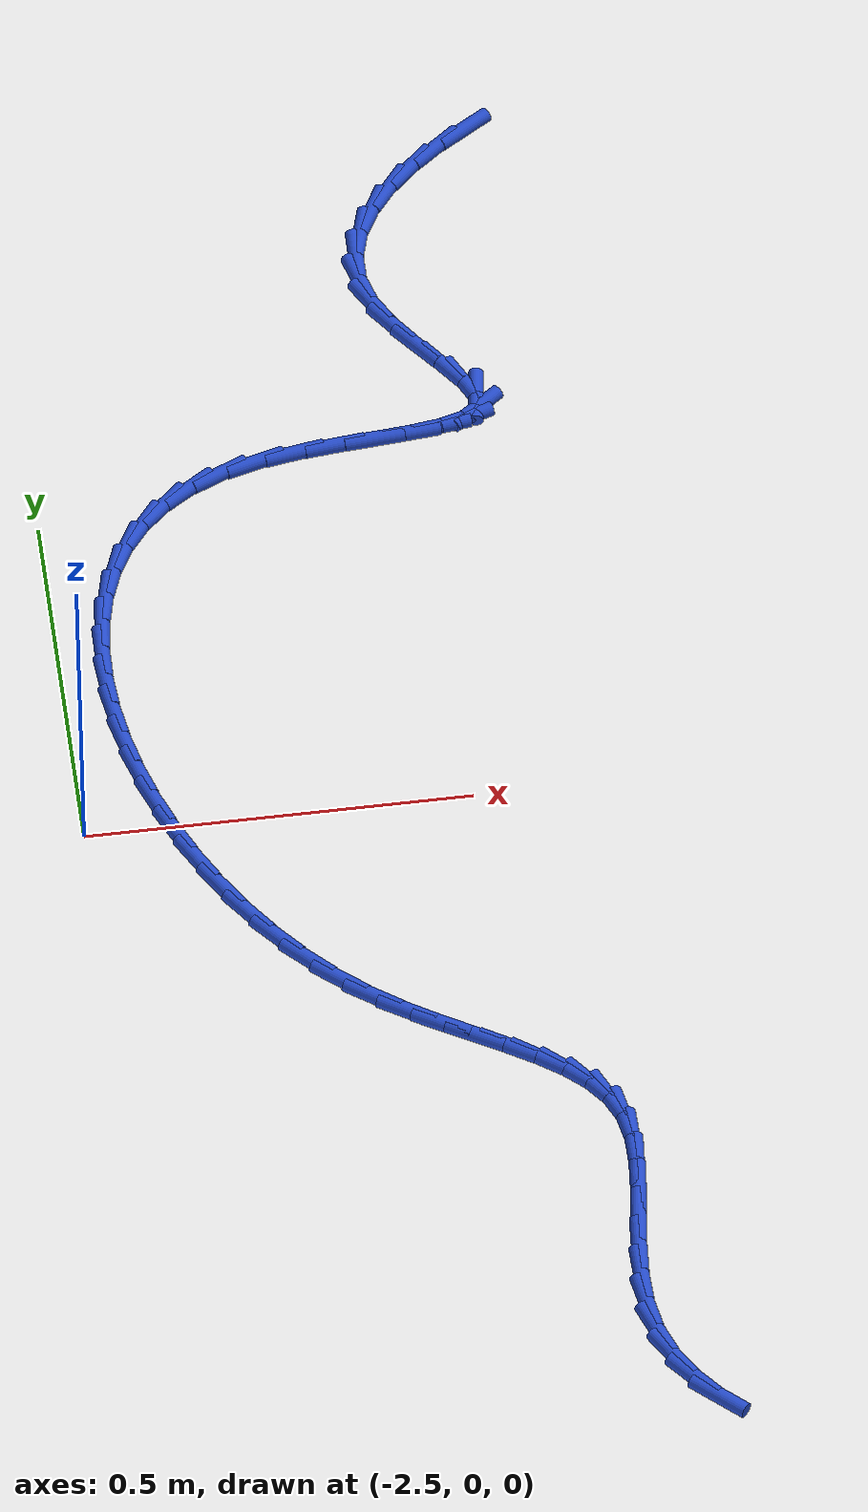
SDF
<sdf version="1.6">
 <world name="default">
  <model name="ground_plane">
   <static>1</static>
   <link name="link">
    <collision name="collision">
     <geometry><plane><normal>0 0 1</normal><size>100 100</size></plane></geometry>
     <surface><friction><ode><mu>100</mu><mu2>50</mu2></ode></friction></surface>
    </collision>
    <visual name="visual">
     <cast_shadows>0</cast_shadows>
     <geometry><plane><normal>0 0 1</normal><size>100 100</size></plane></geometry>
     <material>
      <script><uri>file://media/materials/scripts/gazebo.material</uri><name>Gazebo/WhiteGlow</name></script>
     </material>
    </visual>
   </link>
  </model>
  <model name="line">
   <link name="link_62">
    <pose>-1.864141784131216 1.0916039372777793 0.01 0 1.57 0.571564491749729</pose>
    <collision name="collision">
     <geometry><cylinder><radius>0.01</radius><length>0.08</length></cylinder></geometry>
    </collision>
    <visual name="visual">
     <material>
      <script><name>Gazebo/Blue</name><uri>file://media/materials/scripts/gazebo.material</uri></script>
     </material>
     <geometry><cylinder><radius>0.01</radius><length>0.08</length></cylinder></geometry>
    </visual>
   </link>
   <link name="link_63">
    <pose>-1.9058442936911044 1.06478179984364 0.01 0 1.57 0.6644816196765047</pose>
    <collision name="collision">
     <geometry><cylinder><radius>0.01</radius><length>0.08</length></cylinder></geometry>
    </collision>
    <visual name="visual">
     <material>
      <script><name>Gazebo/Blue</name><uri>file://media/materials/scripts/gazebo.material</uri></script>
     </material>
     <geometry><cylinder><radius>0.01</radius><length>0.08</length></cylinder></geometry>
    </visual>
   </link>
   <link name="link_64">
    <pose>-1.9439185392188851 1.0349578207375465 0.01 0 1.57 0.7748088341033493</pose>
    <collision name="collision">
     <geometry><cylinder><radius>0.01</radius><length>0.08</length></cylinder></geometry>
    </collision>
    <visual name="visual">
     <material>
      <script><name>Gazebo/Blue</name><uri>file://media/materials/scripts/gazebo.material</uri></script>
     </material>
     <geometry><cylinder><radius>0.01</radius><length>0.08</length></cylinder></geometry>
    </visual>
   </link>
   <link name="link_65">
    <pose>-1.9770718049479925 1.0024993651023004 0.01 0 1.57 0.910996080590213</pose>
    <collision name="collision">
     <geometry><cylinder><radius>0.01</radius><length>0.08</length></cylinder></geometry>
    </collision>
    <visual name="visual">
     <material>
      <script><name>Gazebo/Blue</name><uri>file://media/materials/scripts/gazebo.material</uri></script>
     </material>
     <geometry><cylinder><radius>0.01</radius><length>0.08</length></cylinder></geometry>
    </visual>
   </link>
   <link name="link_66">
    <pose>-2.0040113751118627 0.9677737980807014 0.01 0 1.57 1.0829743940209737</pose>
    <collision name="collision">
     <geometry><cylinder><radius>0.01</radius><length>0.08</length></cylinder></geometry>
    </collision>
    <visual name="visual">
     <material>
      <script><name>Gazebo/Blue</name><uri>file://media/materials/scripts/gazebo.material</uri></script>
     </material>
     <geometry><cylinder><radius>0.01</radius><length>0.08</length></cylinder></geometry>
    </visual>
   </link>
   <link name="link_67">
    <pose>-2.023444533943932 0.9311484848155497 0.01 0 1.57 1.2990061089863076</pose>
    <collision name="collision">
     <geometry><cylinder><radius>0.01</radius><length>0.08</length></cylinder></geometry>
    </collision>
    <visual name="visual">
     <material>
      <script><name>Gazebo/Blue</name><uri>file://media/materials/scripts/gazebo.material</uri></script>
     </material>
     <geometry><cylinder><radius>0.01</radius><length>0.08</length></cylinder></geometry>
    </visual>
   </link>
   <link name="link_68">
    <pose>-2.0340785656776355 0.8929907904496458 0.01 0 1.57 1.5570090138406496</pose>
    <collision name="collision">
     <geometry><cylinder><radius>0.01</radius><length>0.08</length></cylinder></geometry>
    </collision>
    <visual name="visual">
     <material>
      <script><name>Gazebo/Blue</name><uri>file://media/materials/scripts/gazebo.material</uri></script>
     </material>
     <geometry><cylinder><radius>0.01</radius><length>0.08</length></cylinder></geometry>
    </visual>
   </link>
   <link name="link_69">
    <pose>-2.034620754546409 0.8536680801257899 0.01 0 1.57 -1.3069392731303564</pose>
    <collision name="collision">
     <geometry><cylinder><radius>0.01</radius><length>0.08</length></cylinder></geometry>
    </collision>
    <visual name="visual">
     <material>
      <script><name>Gazebo/Blue</name><uri>file://media/materials/scripts/gazebo.material</uri></script>
     </material>
     <geometry><cylinder><radius>0.01</radius><length>0.08</length></cylinder></geometry>
    </visual>
   </link>
   <link name="link_70">
    <pose>-2.0237821685634185 0.8135483214166329 0.01 0 1.57 -1.0748596494038498</pose>
    <collision name="collision">
     <geometry><cylinder><radius>0.01</radius><length>0.08</length></cylinder></geometry>
    </collision>
    <visual name="visual">
     <material>
      <script><name>Gazebo/Blue</name><uri>file://media/materials/scripts/gazebo.material</uri></script>
     </material>
     <geometry><cylinder><radius>0.01</radius><length>0.08</length></cylinder></geometry>
    </visual>
   </link>
   <link name="link_71">
    <pose>-2.001991672067023 0.7732729787301851 0.01 0 1.57 -0.9510855397626315</pose>
    <collision name="collision">
     <geometry><cylinder><radius>0.01</radius><length>0.08</length></cylinder></geometry>
    </collision>
    <visual name="visual">
     <material>
      <script><name>Gazebo/Blue</name><uri>file://media/materials/scripts/gazebo.material</uri></script>
     </material>
     <geometry><cylinder><radius>0.01</radius><length>0.08</length></cylinder></geometry>
    </visual>
   </link>
   <link name="link_72">
    <pose>-1.974105963987081 0.7341884887290381 0.01 0 1.57 -0.9083521146899635</pose>
    <collision name="collision">
     <geometry><cylinder><radius>0.01</radius><length>0.08</length></cylinder></geometry>
    </collision>
    <visual name="visual">
     <material>
      <script><name>Gazebo/Blue</name><uri>file://media/materials/scripts/gazebo.material</uri></script>
     </material>
     <geometry><cylinder><radius>0.01</radius><length>0.08</length></cylinder></geometry>
    </visual>
   </link>
   <link name="link_73">
    <pose>-1.9456854939136063 0.6977533348741227 0.01 0 1.57 -0.9443511106208655</pose>
    <collision name="collision">
     <geometry><cylinder><radius>0.01</radius><length>0.08</length></cylinder></geometry>
    </collision>
    <visual name="visual">
     <material>
      <script><name>Gazebo/Blue</name><uri>file://media/materials/scripts/gazebo.material</uri></script>
     </material>
     <geometry><cylinder><radius>0.01</radius><length>0.08</length></cylinder></geometry>
    </visual>
   </link>
   <link name="link_74">
    <pose>-1.9222907114366148 0.6654260006263688 0.01 0 1.57 -1.1243900123114519</pose>
    <collision name="collision">
     <geometry><cylinder><radius>0.01</radius><length>0.08</length></cylinder></geometry>
    </collision>
    <visual name="visual">
     <material>
      <script><name>Gazebo/Blue</name><uri>file://media/materials/scripts/gazebo.material</uri></script>
     </material>
     <geometry><cylinder><radius>0.01</radius><length>0.08</length></cylinder></geometry>
    </visual>
   </link>
   <link name="link_75">
    <pose>-1.9094820661461227 0.638664969446707 0.01 0 1.57 1.4323308383723228</pose>
    <collision name="collision">
     <geometry><cylinder><radius>0.01</radius><length>0.08</length></cylinder></geometry>
    </collision>
    <visual name="visual">
     <material>
      <script><name>Gazebo/Blue</name><uri>file://media/materials/scripts/gazebo.material</uri></script>
     </material>
     <geometry><cylinder><radius>0.01</radius><length>0.08</length></cylinder></geometry>
    </visual>
   </link>
   <link name="link_76">
    <pose>-1.91226055762006 0.6187270649631366 0.01 0 1.57 0.6424432585882228</pose>
    <collision name="collision">
     <geometry><cylinder><radius>0.01</radius><length>0.08</length></cylinder></geometry>
    </collision>
    <visual name="visual">
     <material>
      <script><name>Gazebo/Blue</name><uri>file://media/materials/scripts/gazebo.material</uri></script>
     </material>
     <geometry><cylinder><radius>0.01</radius><length>0.08</length></cylinder></geometry>
    </visual>
   </link>
   <link name="link_77">
    <pose>-1.9305510872084979 0.6050393760669314 0.01 0 1.57 0.28190814599308156</pose>
    <collision name="collision">
     <geometry><cylinder><radius>0.01</radius><length>0.08</length></cylinder></geometry>
    </collision>
    <visual name="visual">
     <material>
      <script><name>Gazebo/Blue</name><uri>file://media/materials/scripts/gazebo.material</uri></script>
     </material>
     <geometry><cylinder><radius>0.01</radius><length>0.08</length></cylinder></geometry>
    </visual>
   </link>
   <link name="link_78">
    <pose>-1.9615745722751252 0.5960543112540417 0.01 0 1.57 0.14162906285425741</pose>
    <collision name="collision">
     <geometry><cylinder><radius>0.01</radius><length>0.08</length></cylinder></geometry>
    </collision>
    <visual name="visual">
     <material>
      <script><name>Gazebo/Blue</name><uri>file://media/materials/scripts/gazebo.material</uri></script>
     </material>
     <geometry><cylinder><radius>0.01</radius><length>0.08</length></cylinder></geometry>
    </visual>
   </link>
   <link name="link_79">
    <pose>-2.002526742037474 0.5902151996795726 0.01 0 1.57 0.08816789836341815</pose>
    <collision name="collision">
     <geometry><cylinder><radius>0.01</radius><length>0.08</length></cylinder></geometry>
    </collision>
    <visual name="visual">
     <material>
      <script><name>Gazebo/Blue</name><uri>file://media/materials/scripts/gazebo.material</uri></script>
     </material>
     <geometry><cylinder><radius>0.01</radius><length>0.08</length></cylinder></geometry>
    </visual>
   </link>
   <link name="link_80">
    <pose>-2.050603325713078 0.5859653704986288 0.01 0 1.57 0.08031315473913857</pose>
    <collision name="collision">
     <geometry><cylinder><radius>0.01</radius><length>0.08</length></cylinder></geometry>
    </collision>
    <visual name="visual">
     <material>
      <script><name>Gazebo/Blue</name><uri>file://media/materials/scripts/gazebo.material</uri></script>
     </material>
     <geometry><cylinder><radius>0.01</radius><length>0.08</length></cylinder></geometry>
    </visual>
   </link>
   <link name="link_81">
    <pose>-2.1030000525194694 0.5817481528663158 0.01 0 1.57 0.1060924591469396</pose>
    <collision name="collision">
     <geometry><cylinder><radius>0.01</radius><length>0.08</length></cylinder></geometry>
    </collision>
    <visual name="visual">
     <material>
      <script><name>Gazebo/Blue</name><uri>file://media/materials/scripts/gazebo.material</uri></script>
     </material>
     <geometry><cylinder><radius>0.01</radius><length>0.08</length></cylinder></geometry>
    </visual>
   </link>
   <link name="link_82">
    <pose>-2.156912651674183 0.5760068759377381 0.01 0 1.57 0.16609714538901912</pose>
    <collision name="collision">
     <geometry><cylinder><radius>0.01</radius><length>0.08</length></cylinder></geometry>
    </collision>
    <visual name="visual">
     <material>
      <script><name>Gazebo/Blue</name><uri>file://media/materials/scripts/gazebo.material</uri></script>
     </material>
     <geometry><cylinder><radius>0.01</radius><length>0.08</length></cylinder></geometry>
    </visual>
   </link>
   <link name="link_83">
    <pose>-2.2095368523947494 0.5671848688680012 0.01 0 1.57 0.27040608945299766</pose>
    <collision name="collision">
     <geometry><cylinder><radius>0.01</radius><length>0.08</length></cylinder></geometry>
    </collision>
    <visual name="visual">
     <material>
      <script><name>Gazebo/Blue</name><uri>file://media/materials/scripts/gazebo.material</uri></script>
     </material>
     <geometry><cylinder><radius>0.01</radius><length>0.08</length></cylinder></geometry>
    </visual>
   </link>
   <link name="link_84">
    <pose>-2.258075394941664 0.553730209173439 0.01 0 1.57 0.41984244460762843</pose>
    <collision name="collision">
     <geometry><cylinder><radius>0.01</radius><length>0.08</length></cylinder></geometry>
    </collision>
    <visual name="visual">
     <material>
      <script><name>Gazebo/Blue</name><uri>file://media/materials/scripts/gazebo.material</uri></script>
     </material>
     <geometry><cylinder><radius>0.01</radius><length>0.08</length></cylinder></geometry>
    </visual>
   </link>
   <link name="link_85">
    <pose>-2.300660886988296 0.5347207446336341 0.01 0 1.57 0.58461759404443</pose>
    <collision name="collision">
     <geometry><cylinder><radius>0.01</radius><length>0.08</length></cylinder></geometry>
    </collision>
    <visual name="visual">
     <material>
      <script><name>Gazebo/Blue</name><uri>file://media/materials/scripts/gazebo.material</uri></script>
     </material>
     <geometry><cylinder><radius>0.01</radius><length>0.08</length></cylinder></geometry>
    </visual>
   </link>
   <link name="link_86">
    <pose>-2.33727747960394 0.5104883157541514 0.01 0 1.57 0.7540507502458224</pose>
    <collision name="collision">
     <geometry><cylinder><radius>0.01</radius><length>0.08</length></cylinder></geometry>
    </collision>
    <visual name="visual">
     <material>
      <script><name>Gazebo/Blue</name><uri>file://media/materials/scripts/gazebo.material</uri></script>
     </material>
     <geometry><cylinder><radius>0.01</radius><length>0.08</length></cylinder></geometry>
    </visual>
   </link>
   <link name="link_87">
    <pose>-2.368128560069671 0.4815132449046287 0.01 0 1.57 0.9203818345682576</pose>
    <collision name="collision">
     <geometry><cylinder><radius>0.01</radius><length>0.08</length></cylinder></geometry>
    </collision>
    <visual name="visual">
     <material>
      <script><name>Gazebo/Blue</name><uri>file://media/materials/scripts/gazebo.material</uri></script>
     </material>
     <geometry><cylinder><radius>0.01</radius><length>0.08</length></cylinder></geometry>
    </visual>
   </link>
   <link name="link_88">
    <pose>-2.393417515666566 0.4482758544547048 0.01 0 1.57 1.0769240335240629</pose>
    <collision name="collision">
     <geometry><cylinder><radius>0.01</radius><length>0.08</length></cylinder></geometry>
    </collision>
    <visual name="visual">
     <material>
      <script><name>Gazebo/Blue</name><uri>file://media/materials/scripts/gazebo.material</uri></script>
     </material>
     <geometry><cylinder><radius>0.01</radius><length>0.08</length></cylinder></geometry>
    </visual>
   </link>
   <link name="link_89">
    <pose>-2.413347733675697 0.41125646677401795 0.01 0 1.57 1.2195597139332894</pose>
    <collision name="collision">
     <geometry><cylinder><radius>0.01</radius><length>0.08</length></cylinder></geometry>
    </collision>
    <visual name="visual">
     <material>
      <script><name>Gazebo/Blue</name><uri>file://media/materials/scripts/gazebo.material</uri></script>
     </material>
     <geometry><cylinder><radius>0.01</radius><length>0.08</length></cylinder></geometry>
    </visual>
   </link>
   <link name="link_90">
    <pose>-2.428122601378141 0.3709354042322073 0.01 0 1.57 1.3469272101276322</pose>
    <collision name="collision">
     <geometry><cylinder><radius>0.01</radius><length>0.08</length></cylinder></geometry>
    </collision>
    <visual name="visual">
     <material>
      <script><name>Gazebo/Blue</name><uri>file://media/materials/scripts/gazebo.material</uri></script>
     </material>
     <geometry><cylinder><radius>0.01</radius><length>0.08</length></cylinder></geometry>
    </visual>
   </link>
   <link name="link_91">
    <pose>-2.4379455060549717 0.3277929891989102 0.01 0 1.57 1.459691461118424</pose>
    <collision name="collision">
     <geometry><cylinder><radius>0.01</radius><length>0.08</length></cylinder></geometry>
    </collision>
    <visual name="visual">
     <material>
      <script><name>Gazebo/Blue</name><uri>file://media/materials/scripts/gazebo.material</uri></script>
     </material>
     <geometry><cylinder><radius>0.01</radius><length>0.08</length></cylinder></geometry>
    </visual>
   </link>
   <link name="link_92">
    <pose>-2.4430198349872634 0.28230954404376535 0.01 0 1.57 1.5596203228803498</pose>
    <collision name="collision">
     <geometry><cylinder><radius>0.01</radius><length>0.08</length></cylinder></geometry>
    </collision>
    <visual name="visual">
     <material>
      <script><name>Gazebo/Blue</name><uri>file://media/materials/scripts/gazebo.material</uri></script>
     </material>
     <geometry><cylinder><radius>0.01</radius><length>0.08</length></cylinder></geometry>
    </visual>
   </link>
   <link name="link_93">
    <pose>-2.443548975456092 0.2349653911364119 0.01 0 1.57 -1.4927061543497409</pose>
    <collision name="collision">
     <geometry><cylinder><radius>0.01</radius><length>0.08</length></cylinder></geometry>
    </collision>
    <visual name="visual">
     <material>
      <script><name>Gazebo/Blue</name><uri>file://media/materials/scripts/gazebo.material</uri></script>
     </material>
     <geometry><cylinder><radius>0.01</radius><length>0.08</length></cylinder></geometry>
    </visual>
   </link>
   <link name="link_94">
    <pose>-2.4397363147425315 0.18624085284648728 0.01 0 1.57 -1.4119222215359504</pose>
    <collision name="collision">
     <geometry><cylinder><radius>0.01</radius><length>0.08</length></cylinder></geometry>
    </collision>
    <visual name="visual">
     <material>
      <script><name>Gazebo/Blue</name><uri>file://media/materials/scripts/gazebo.material</uri></script>
     </material>
     <geometry><cylinder><radius>0.01</radius><length>0.08</length></cylinder></geometry>
    </visual>
   </link>
   <link name="link_95">
    <pose>-2.431785240127658 0.13661625154363036 0.01 0 1.57 -1.3376057440010736</pose>
    <collision name="collision">
     <geometry><cylinder><radius>0.01</radius><length>0.08</length></cylinder></geometry>
    </collision>
    <visual name="visual">
     <material>
      <script><name>Gazebo/Blue</name><uri>file://media/materials/scripts/gazebo.material</uri></script>
     </material>
     <geometry><cylinder><radius>0.01</radius><length>0.08</length></cylinder></geometry>
    </visual>
   </link>
   <link name="link_96">
    <pose>-2.4198991388925437 0.08657190959747951 0.01 0 1.57 -1.2679512747348227</pose>
    <collision name="collision">
     <geometry><cylinder><radius>0.01</radius><length>0.08</length></cylinder></geometry>
    </collision>
    <visual name="visual">
     <material>
      <script><name>Gazebo/Blue</name><uri>file://media/materials/scripts/gazebo.material</uri></script>
     </material>
     <geometry><cylinder><radius>0.01</radius><length>0.08</length></cylinder></geometry>
    </visual>
   </link>
   <link name="link_97">
    <pose>-2.404281398318266 0.036588149377673206 0.01 0 1.57 -1.2013426688589506</pose>
    <collision name="collision">
     <geometry><cylinder><radius>0.01</radius><length>0.08</length></cylinder></geometry>
    </collision>
    <visual name="visual">
     <material>
      <script><name>Gazebo/Blue</name><uri>file://media/materials/scripts/gazebo.material</uri></script>
     </material>
     <geometry><cylinder><radius>0.01</radius><length>0.08</length></cylinder></geometry>
    </visual>
   </link>
   <link name="link_98">
    <pose>-2.3851354056858987 -0.012854706746149108 0.01 0 1.57 -1.1363064461695538</pose>
    <collision name="collision">
     <geometry><cylinder><radius>0.01</radius><length>0.08</length></cylinder></geometry>
    </collision>
    <visual name="visual">
     <material>
      <script><name>Gazebo/Blue</name><uri>file://media/materials/scripts/gazebo.material</uri></script>
     </material>
     <geometry><cylinder><radius>0.01</radius><length>0.08</length></cylinder></geometry>
    </visual>
   </link>
   <link name="link_99">
    <pose>-2.3626645482765167 -0.06127633640435111 0.01 0 1.57 -1.071456774233871</pose>
    <collision name="collision">
     <geometry><cylinder><radius>0.01</radius><length>0.08</length></cylinder></geometry>
    </collision>
    <visual name="visual">
     <material>
      <script><name>Gazebo/Blue</name><uri>file://media/materials/scripts/gazebo.material</uri></script>
     </material>
     <geometry><cylinder><radius>0.01</radius><length>0.08</length></cylinder></geometry>
    </visual>
   </link>
   <link name="link_100">
    <pose>-2.3370722133711945 -0.10819641722729324 0.01 0 1.57 -1.0054402172559207</pose>
    <collision name="collision">
     <geometry><cylinder><radius>0.01</radius><length>0.08</length></cylinder></geometry>
    </collision>
    <visual name="visual">
     <material>
      <script><name>Gazebo/Blue</name><uri>file://media/materials/scripts/gazebo.material</uri></script>
     </material>
     <geometry><cylinder><radius>0.01</radius><length>0.08</length></cylinder></geometry>
    </visual>
   </link>
   <link name="link_101">
    <pose>-2.3085617882510063 -0.15313462684533716 0.01 0 1.57 -0.936884199473139</pose>
    <collision name="collision">
     <geometry><cylinder><radius>0.01</radius><length>0.08</length></cylinder></geometry>
    </collision>
    <visual name="visual">
     <material>
      <script><name>Gazebo/Blue</name><uri>file://media/materials/scripts/gazebo.material</uri></script>
     </material>
     <geometry><cylinder><radius>0.01</radius><length>0.08</length></cylinder></geometry>
    </visual>
   </link>
   <link name="link_102">
    <pose>-2.2773366601970286 -0.19561064288884442 0.01 0 1.57 -0.8643528493745478</pose>
    <collision name="collision">
     <geometry><cylinder><radius>0.01</radius><length>0.08</length></cylinder></geometry>
    </collision>
    <visual name="visual">
     <material>
      <script><name>Gazebo/Blue</name><uri>file://media/materials/scripts/gazebo.material</uri></script>
     </material>
     <geometry><cylinder><radius>0.01</radius><length>0.08</length></cylinder></geometry>
    </visual>
   </link>
   <link name="link_103">
    <pose>-2.2436002164903353 -0.23514414298817665 0.01 0 1.57 -0.7863168753013023</pose>
    <collision name="collision">
     <geometry><cylinder><radius>0.01</radius><length>0.08</length></cylinder></geometry>
    </collision>
    <visual name="visual">
     <material>
      <script><name>Gazebo/Blue</name><uri>file://media/materials/scripts/gazebo.material</uri></script>
     </material>
     <geometry><cylinder><radius>0.01</radius><length>0.08</length></cylinder></geometry>
    </visual>
   </link>
   <link name="link_104">
    <pose>-2.2075558444120005 -0.27125480477369535 0.01 0 1.57 -0.7012964988675874</pose>
    <collision name="collision">
     <geometry><cylinder><radius>0.01</radius><length>0.08</length></cylinder></geometry>
    </collision>
    <visual name="visual">
     <material>
      <script><name>Gazebo/Blue</name><uri>file://media/materials/scripts/gazebo.material</uri></script>
     </material>
     <geometry><cylinder><radius>0.01</radius><length>0.08</length></cylinder></geometry>
    </visual>
   </link>
   <link name="link_105">
    <pose>-2.169410834465066 -0.3034685366648414 0.01 0 1.57 -0.6194975023048076</pose>
    <collision name="collision">
     <geometry><cylinder><radius>0.01</radius><length>0.08</length></cylinder></geometry>
    </collision>
    <visual name="visual">
     <material>
      <script><name>Gazebo/Blue</name><uri>file://media/materials/scripts/gazebo.material</uri></script>
     </material>
     <geometry><cylinder><radius>0.01</radius><length>0.08</length></cylinder></geometry>
    </visual>
   </link>
   <link name="link_106">
    <pose>-2.1296801975776556 -0.33180246717597905 0.01 0 1.57 -0.5610306374395739</pose>
    <collision name="collision">
     <geometry><cylinder><radius>0.01</radius><length>0.08</length></cylinder></geometry>
    </collision>
    <visual name="visual">
     <material>
      <script><name>Gazebo/Blue</name><uri>file://media/materials/scripts/gazebo.material</uri></script>
     </material>
     <geometry><cylinder><radius>0.01</radius><length>0.08</length></cylinder></geometry>
    </visual>
   </link>
   <link name="link_107">
    <pose>-2.0894038172662768 -0.3571115891348825 0.01 0 1.57 -0.5289137648425014</pose>
    <collision name="collision">
     <geometry><cylinder><radius>0.01</radius><length>0.08</length></cylinder></geometry>
    </collision>
    <visual name="visual">
     <material>
      <script><name>Gazebo/Blue</name><uri>file://media/materials/scripts/gazebo.material</uri></script>
     </material>
     <geometry><cylinder><radius>0.01</radius><length>0.08</length></cylinder></geometry>
    </visual>
   </link>
   <link name="link_108">
    <pose>-2.0496728313261676 -0.38033271357055703 0.01 0 1.57 -0.5250956270011502</pose>
    <collision name="collision">
     <geometry><cylinder><radius>0.01</radius><length>0.08</length></cylinder></geometry>
    </collision>
    <visual name="visual">
     <material>
      <script><name>Gazebo/Blue</name><uri>file://media/materials/scripts/gazebo.material</uri></script>
     </material>
     <geometry><cylinder><radius>0.01</radius><length>0.08</length></cylinder></geometry>
    </visual>
   </link>
   <link name="link_109">
    <pose>-2.0115783775525644 -0.4024026515120082 0.01 0 1.57 -0.5535270539954007</pose>
    <collision name="collision">
     <geometry><cylinder><radius>0.01</radius><length>0.08</length></cylinder></geometry>
    </collision>
    <visual name="visual">
     <material>
      <script><name>Gazebo/Blue</name><uri>file://media/materials/scripts/gazebo.material</uri></script>
     </material>
     <geometry><cylinder><radius>0.01</radius><length>0.08</length></cylinder></geometry>
    </visual>
   </link>
   <link name="link_110">
    <pose>-1.9762115937407045 -0.42425821398824143 0.01 0 1.57 -0.6211667237246505</pose>
    <collision name="collision">
     <geometry><cylinder><radius>0.01</radius><length>0.08</length></cylinder></geometry>
    </collision>
    <visual name="visual">
     <material>
      <script><name>Gazebo/Blue</name><uri>file://media/materials/scripts/gazebo.material</uri></script>
     </material>
     <geometry><cylinder><radius>0.01</radius><length>0.08</length></cylinder></geometry>
    </visual>
   </link>
   <link name="link_111">
    <pose>-1.944663617685824 -0.44683621202826207 0.01 0 1.57 -0.738243505898842</pose>
    <collision name="collision">
     <geometry><cylinder><radius>0.01</radius><length>0.08</length></cylinder></geometry>
    </collision>
    <visual name="visual">
     <material>
      <script><name>Gazebo/Blue</name><uri>file://media/materials/scripts/gazebo.material</uri></script>
     </material>
     <geometry><cylinder><radius>0.01</radius><length>0.08</length></cylinder></geometry>
    </visual>
   </link>
   <link name="link_112">
    <pose>-1.9180255871831604 -0.4710734566610749 0.01 0 1.57 -0.9151956380538776</pose>
    <collision name="collision">
     <geometry><cylinder><radius>0.01</radius><length>0.08</length></cylinder></geometry>
    </collision>
    <visual name="visual">
     <material>
      <script><name>Gazebo/Blue</name><uri>file://media/materials/scripts/gazebo.material</uri></script>
     </material>
     <geometry><cylinder><radius>0.01</radius><length>0.08</length></cylinder></geometry>
    </visual>
   </link>
   <link name="link_113">
    <pose>-1.8973886400279496 -0.4979067589156867 0.01 0 1.57 -1.1512244054520346</pose>
    <collision name="collision">
     <geometry><cylinder><radius>0.01</radius><length>0.08</length></cylinder></geometry>
    </collision>
    <visual name="visual">
     <material>
      <script><name>Gazebo/Blue</name><uri>file://media/materials/scripts/gazebo.material</uri></script>
     </material>
     <geometry><cylinder><radius>0.01</radius><length>0.08</length></cylinder></geometry>
    </visual>
   </link>
   <link name="link_114">
    <pose>-1.8838436081169734 -0.5282727553002577 0.01 0 1.57 -1.3979036576486827</pose>
    <collision name="collision">
     <geometry><cylinder><radius>0.01</radius><length>0.08</length></cylinder></geometry>
    </collision>
    <visual name="visual">
     <material>
      <script><name>Gazebo/Blue</name><uri>file://media/materials/scripts/gazebo.material</uri></script>
     </material>
     <geometry><cylinder><radius>0.01</radius><length>0.08</length></cylinder></geometry>
    </visual>
   </link>
   <link name="link_115">
    <pose>-1.877825445697822 -0.5627338917411085 0.01 0 1.57 -1.5681922996590416</pose>
    <collision name="collision">
     <geometry><cylinder><radius>0.01</radius><length>0.08</length></cylinder></geometry>
    </collision>
    <visual name="visual">
     <material>
      <script><name>Gazebo/Blue</name><uri>file://media/materials/scripts/gazebo.material</uri></script>
     </material>
     <geometry><cylinder><radius>0.01</radius><length>0.08</length></cylinder></geometry>
    </visual>
   </link>
   <link name="link_116">
    <pose>-1.8777266136830901 -0.6006873331546483 0.01 0 1.57 1.4771075802406557</pose>
    <collision name="collision">
     <geometry><cylinder><radius>0.01</radius><length>0.08</length></cylinder></geometry>
    </collision>
    <visual name="visual">
     <material>
      <script><name>Gazebo/Blue</name><uri>file://media/materials/scripts/gazebo.material</uri></script>
     </material>
     <geometry><cylinder><radius>0.01</radius><length>0.08</length></cylinder></geometry>
    </visual>
   </link>
   <link name="link_117">
    <pose>-1.8815431168906063 -0.6413040587701256 0.01 0 1.57 1.4366779360687492</pose>
    <collision name="collision">
     <geometry><cylinder><radius>0.01</radius><length>0.08</length></cylinder></geometry>
    </collision>
    <visual name="visual">
     <material>
      <script><name>Gazebo/Blue</name><uri>file://media/materials/scripts/gazebo.material</uri></script>
     </material>
     <geometry><cylinder><radius>0.01</radius><length>0.08</length></cylinder></geometry>
    </visual>
   </link>
   <link name="link_118">
    <pose>-1.8872709601381967 -0.6837550478167882 0.01 0 1.57 1.4418409063059046</pose>
    <collision name="collision">
     <geometry><cylinder><radius>0.01</radius><length>0.08</length></cylinder></geometry>
    </collision>
    <visual name="visual">
     <material>
      <script><name>Gazebo/Blue</name><uri>file://media/materials/scripts/gazebo.material</uri></script>
     </material>
     <geometry><cylinder><radius>0.01</radius><length>0.08</length></cylinder></geometry>
    </visual>
   </link>
   <link name="link_119">
    <pose>-1.8929061482436913 -0.7272112795238871 0.01 0 1.57 1.4898746665153246</pose>
    <collision name="collision">
     <geometry><cylinder><radius>0.01</radius><length>0.08</length></cylinder></geometry>
    </collision>
    <visual name="visual">
     <material>
      <script><name>Gazebo/Blue</name><uri>file://media/materials/scripts/gazebo.material</uri></script>
     </material>
     <geometry><cylinder><radius>0.01</radius><length>0.08</length></cylinder></geometry>
    </visual>
   </link>
   <link name="link_120">
    <pose>-1.896444686024917 -0.7708437331206702 0.01 0 1.57 -1.5577186116890502</pose>
    <collision name="collision">
     <geometry><cylinder><radius>0.01</radius><length>0.08</length></cylinder></geometry>
    </collision>
    <visual name="visual">
     <material>
      <script><name>Gazebo/Blue</name><uri>file://media/materials/scripts/gazebo.material</uri></script>
     </material>
     <geometry><cylinder><radius>0.01</radius><length>0.08</length></cylinder></geometry>
    </visual>
   </link>
   <link name="link_121">
    <pose>-1.8958825782997013 -0.8138233878363863 0.01 0 1.57 -1.4115045061967217</pose>
    <collision name="collision">
     <geometry><cylinder><radius>0.01</radius><length>0.08</length></cylinder></geometry>
    </collision>
    <visual name="visual">
     <material>
      <script><name>Gazebo/Blue</name><uri>file://media/materials/scripts/gazebo.material</uri></script>
     </material>
     <geometry><cylinder><radius>0.01</radius><length>0.08</length></cylinder></geometry>
    </visual>
   </link>
   <link name="link_122">
    <pose>-1.8892158298858726 -0.8553212229002841 0.01 0 1.57 -1.221823437671887</pose>
    <collision name="collision">
     <geometry><cylinder><radius>0.01</radius><length>0.08</length></cylinder></geometry>
    </collision>
    <visual name="visual">
     <material>
      <script><name>Gazebo/Blue</name><uri>file://media/materials/scripts/gazebo.material</uri></script>
     </material>
     <geometry><cylinder><radius>0.01</radius><length>0.08</length></cylinder></geometry>
    </visual>
   </link>
   <link name="link_123">
    <pose>-1.874957290552274 -0.8945075717922236 0.01 0 1.57 -1.0430309349019409</pose>
    <collision name="collision">
     <geometry><cylinder><radius>0.01</radius><length>0.08</length></cylinder></geometry>
    </collision>
    <visual name="visual">
     <material>
      <script><name>Gazebo/Blue</name><uri>file://media/materials/scripts/gazebo.material</uri></script>
     </material>
     <geometry><cylinder><radius>0.01</radius><length>0.08</length></cylinder></geometry>
    </visual>
   </link>
   <link name="link_124">
    <pose>-1.8539475494100153 -0.9305498596996298 0.01 0 1.57 -0.8844978405277747</pose>
    <collision name="collision">
     <geometry><cylinder><radius>0.01</radius><length>0.08</length></cylinder></geometry>
    </collision>
    <visual name="visual">
     <material>
      <script><name>Gazebo/Blue</name><uri>file://media/materials/scripts/gazebo.material</uri></script>
     </material>
     <geometry><cylinder><radius>0.01</radius><length>0.08</length></cylinder></geometry>
    </visual>
   </link>
   <link name="link_125">
    <pose>-1.8276822141709186 -0.962614693425497 0.01 0 1.57 -0.737055936231711</pose>
    <collision name="collision">
     <geometry><cylinder><radius>0.01</radius><length>0.08</length></cylinder></geometry>
    </collision>
    <visual name="visual">
     <material>
      <script><name>Gazebo/Blue</name><uri>file://media/materials/scripts/gazebo.material</uri></script>
     </material>
     <geometry><cylinder><radius>0.01</radius><length>0.08</length></cylinder></geometry>
    </visual>
   </link>
  </model>
 </world>
</sdf>
